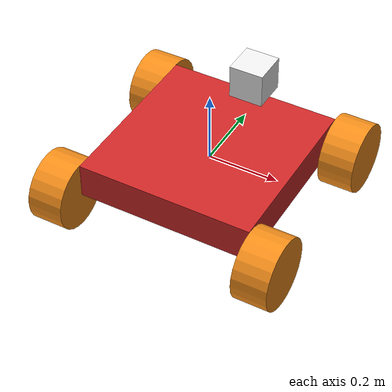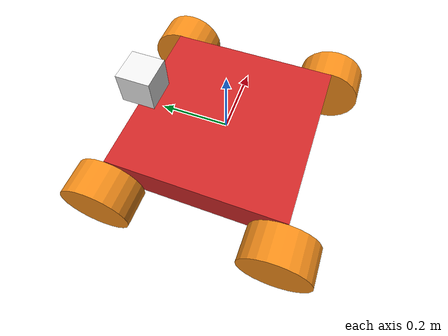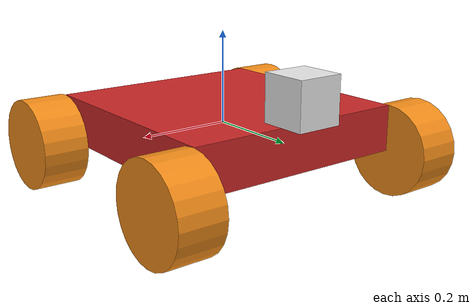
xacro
<?xml version="1.0"?>
<robot xmlns:xacro="http://www.ros.org/wiki/xacro" name="car">

    <xacro:include filename="materials.xacro" />

    <!-- #region XACRO_MACROS -->

    <!-- #region CONSTANTS -->
    <xacro:property name="boxheight" value="0.1" />
    <xacro:property name="carlength" value="0.75" />
    <xacro:property name="carmass" value="0.05" />
    <xacro:property name="carwidth" value="0.05" />
    <xacro:property name="pitchlimit" value="0" />
    <xacro:property name="cardamping" value="0.0" />
    <xacro:property name="carfriction" value="0.01" />
    <xacro:property name="camerasize" value="0.10" />
    <!-- #endregion -->

    <!-- #region MAKE_BOX -->
    <xacro:macro name="make_box" params="length width height mass material originxyz originrpy">
        <visual>
            <origin rpy="${originrpy}" xyz="${originxyz}"/>
            <geometry>
                <box size="${length} ${width} ${height}"/>
            </geometry>
            <material name="${material}"/>
        </visual>
        <collision>
            <origin rpy="${originrpy}" xyz="${originxyz}"/>
            <geometry>
                <box size="${length} ${width} ${height}"/>
            </geometry>
        </collision>
        <inertial>
            <mass value="${mass}"/>
            <inertia
                ixx="${1/12 * mass * (height*height + length*length)}"
                iyy="${1/12 * mass * (width*width + length*length)}"
                izz="${1/12 * mass * (width*width + height*height)}"
                ixy="0"
                ixz="0"
                iyz="0"
            />
        </inertial>
    </xacro:macro>
    <!-- #endregion -->

    <!-- #region MAKE_CYLINDER -->
    <xacro:macro name="make_cylinder" params="length radius mass material originxyz originrpy">
        <visual>
            <origin rpy="${originrpy}" xyz="${originxyz}"/>
            <geometry>
                <cylinder length="${length}" radius="${radius}"/>
            </geometry>
            <material name="${material}"/>
        </visual>
        <collision>
            <origin xyz="${originxyz}" rpy="${originrpy}"/>
            <geometry>
                <cylinder length="${length}" radius="${length}"/>
            </geometry>
        </collision>
        <inertial>
            <mass value="${mass}"/>
            <inertia
                ixx="${1/12 * mass * (3*radius*radius + length*length)}"
                iyy="${1/12 * mass * (3*radius*radius + length*length)}"
                izz="${1/2 * mass * radius*radius}"
                ixy="0"
                ixz="0"
                iyz="0"
            />
        </inertial>
    </xacro:macro>
    <!-- #endregion -->

    <!-- #endregion -->

    <!-- ROBOT BEGINS HERE -->
    <!-- ROBOT BEGINS HERE -->
    <!-- ROBOT BEGINS HERE -->

    <!-- #region BASE -->
    <link name="base_link">
        <xacro:make_box length="0.5" width="0.5" height="${boxheight}" mass="${carmass}" material="red" originxyz="0 0 0" originrpy="0 0 0"/>
    </link>
    <!-- #endregion -->

    <!-- #region WHEELS -->
    <!-- #region FRONT_LEFT_WHEEL -->
    <link name="front_left_wheel">
        <xacro:make_cylinder length="0.1" radius="0.1" mass="${carmass}" material="orange" originxyz="0.051 0 0" originrpy="0 1.570796327 0"/>
    </link>

    <joint name="base_to_front_left_wheel" type="fixed">
        <parent link="base_link"/>
        <child link="front_left_wheel"/>
        <!-- joint of child is xyz away from parent -->
        <origin xyz="0.25 0.25 ${-boxheight/2}"/>
        <axis xyz="1 0 0"/>
    </joint>
    <!-- #endregion -->

    <!-- #region FRONT_RIGHT_WHEEL -->
    <link name="front_right_wheel">
        <xacro:make_cylinder length="0.1" radius="0.1" mass="${carmass}" material="orange" originxyz="0.051 0 0" originrpy="0 -1.570796327 0"/>
    </link>

    <joint name="base_to_front_right_wheel" type="fixed">
        <parent link="base_link"/>
        <child link="front_right_wheel"/>
        <!-- joint of child is xyz away from parent -->
        <origin xyz="0.25 -0.25 ${-boxheight/2}"/>
        <axis xyz="1 0 0"/>
    </joint>
    <!-- #endregion -->

    <!-- #region BACK_LEFT_WHEEL -->
    <link name="back_left_wheel">
        <xacro:make_cylinder length="0.1" radius="0.1" mass="${carmass}" material="orange" originxyz="-0.051 0 0" originrpy="0 1.570796327 0"/>
    </link>

    <joint name="base_to_back_left_wheel" type="fixed">
        <parent link="base_link"/>
        <child link="back_left_wheel"/>
        <!-- joint of child is xyz away from parent -->
        <origin xyz="-0.25 0.25 ${-boxheight/2}"/>
        <axis xyz="1 0 0"/>
    </joint>
    <!-- #endregion -->

    <!-- #region BACK_RIGHT_WHEEL -->
    <link name="back_right_wheel">
        <xacro:make_cylinder length="0.1" radius="0.1" mass="${carmass}" material="orange" originxyz="-0.051 0 0" originrpy="0 1.570796327 0"/>
    </link>

    <joint name="base_to_back_right_wheel" type="fixed">
        <parent link="base_link"/>
        <child link="back_right_wheel"/>
        <!-- joint of child is xyz away from parent -->
        <origin xyz="-0.25 -0.25 ${-boxheight/2}"/>
        <axis xyz="1 0 0"/>
    </joint>
    <!-- #endregion -->
    <!-- #endregion -->

    <!-- #region CAMERA -->
    <link name="camera">
        <xacro:make_box length="${camerasize}" width="${camerasize}" height="${camerasize}" mass="0" material="white" originxyz="0 0 ${camerasize/2}" originrpy="0 0 0"/>
    </link>

    <joint name="base_to_camera" type="fixed">
        <axis xyz="0 1 0" />
        <origin xyz="0 ${0.5/2} ${boxheight/2}" rpy="0 0 1.57"/>
        <parent link="base_link"/>
        <child link="camera"/>
    </joint>
    <!-- #endregion -->

</robot>
